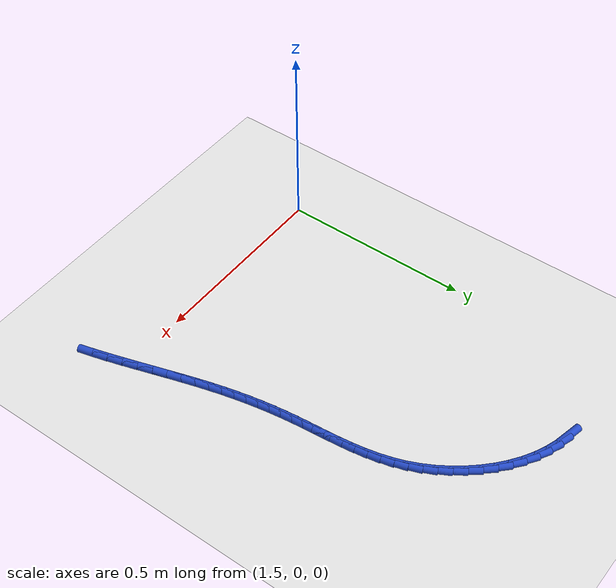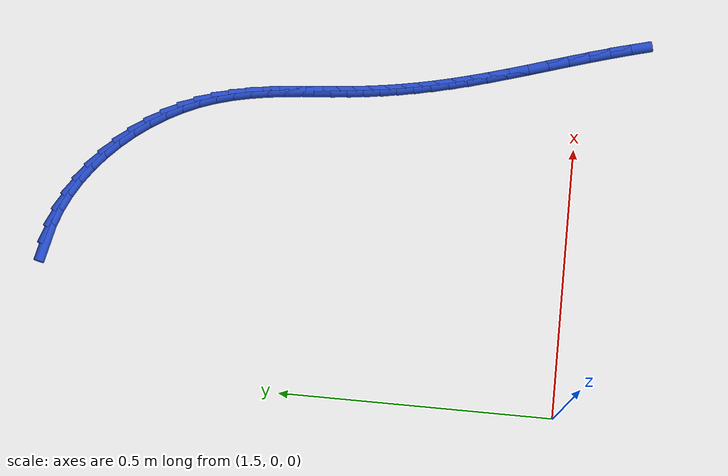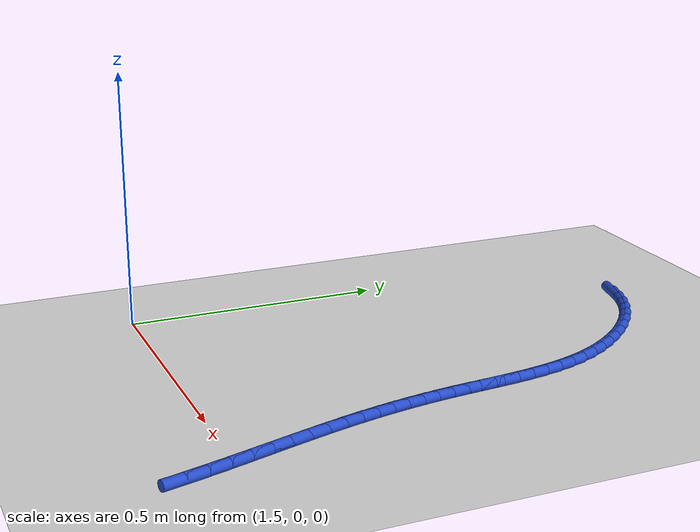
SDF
<sdf version="1.6">
 <world name="default">
  <model name="ground_plane">
   <static>1</static>
   <link name="link">
    <collision name="collision">
     <geometry><plane><normal>0 0 1</normal><size>100 100</size></plane></geometry>
     <surface><friction><ode><mu>100</mu><mu2>50</mu2></ode></friction></surface>
    </collision>
    <visual name="visual">
     <cast_shadows>0</cast_shadows>
     <geometry><plane><normal>0 0 1</normal><size>100 100</size></plane></geometry>
     <material>
      <script><uri>file://media/materials/scripts/gazebo.material</uri><name>Gazebo/WhiteGlow</name></script>
     </material>
    </visual>
   </link>
  </model>
  <model name="line">
   <link name="link_75">
    <pose>1.7390801359786912 0.9519437133059039 0.01 0 1.57 -0.2205212773113578</pose>
    <collision name="collision">
     <geometry><cylinder><radius>0.01</radius><length>0.08</length></cylinder></geometry>
    </collision>
    <visual name="visual">
     <material>
      <script><name>Gazebo/Blue</name><uri>file://media/materials/scripts/gazebo.material</uri></script>
     </material>
     <geometry><cylinder><radius>0.01</radius><length>0.08</length></cylinder></geometry>
    </visual>
   </link>
   <link name="link_76">
    <pose>1.7697646347118712 0.9450652665101434 0.01 0 1.57 -0.3317823296719829</pose>
    <collision name="collision">
     <geometry><cylinder><radius>0.01</radius><length>0.08</length></cylinder></geometry>
    </collision>
    <visual name="visual">
     <material>
      <script><name>Gazebo/Blue</name><uri>file://media/materials/scripts/gazebo.material</uri></script>
     </material>
     <geometry><cylinder><radius>0.01</radius><length>0.08</length></cylinder></geometry>
    </visual>
   </link>
   <link name="link_77">
    <pose>1.7997855909751648 0.9347225209726223 0.01 0 1.57 -0.4344257023588785</pose>
    <collision name="collision">
     <geometry><cylinder><radius>0.01</radius><length>0.08</length></cylinder></geometry>
    </collision>
    <visual name="visual">
     <material>
      <script><name>Gazebo/Blue</name><uri>file://media/materials/scripts/gazebo.material</uri></script>
     </material>
     <geometry><cylinder><radius>0.01</radius><length>0.08</length></cylinder></geometry>
    </visual>
   </link>
   <link name="link_78">
    <pose>1.8289620499832029 0.9211849787125048 0.01 0 1.57 -0.5291714408558121</pose>
    <collision name="collision">
     <geometry><cylinder><radius>0.01</radius><length>0.08</length></cylinder></geometry>
    </collision>
    <visual name="visual">
     <material>
      <script><name>Gazebo/Blue</name><uri>file://media/materials/scripts/gazebo.material</uri></script>
     </material>
     <geometry><cylinder><radius>0.01</radius><length>0.08</length></cylinder></geometry>
    </visual>
   </link>
   <link name="link_79">
    <pose>1.8571130569504533 0.9047221417524219 0.01 0 1.57 -0.6171088332450005</pose>
    <collision name="collision">
     <geometry><cylinder><radius>0.01</radius><length>0.08</length></cylinder></geometry>
    </collision>
    <visual name="visual">
     <material>
      <script><name>Gazebo/Blue</name><uri>file://media/materials/scripts/gazebo.material</uri></script>
     </material>
     <geometry><cylinder><radius>0.01</radius><length>0.08</length></cylinder></geometry>
    </visual>
   </link>
   <link name="link_80">
    <pose>1.884057657091386 0.8856035121150049 0.01 0 1.57 -0.6995043630200591</pose>
    <collision name="collision">
     <geometry><cylinder><radius>0.01</radius><length>0.08</length></cylinder></geometry>
    </collision>
    <visual name="visual">
     <material>
      <script><name>Gazebo/Blue</name><uri>file://media/materials/scripts/gazebo.material</uri></script>
     </material>
     <geometry><cylinder><radius>0.01</radius><length>0.08</length></cylinder></geometry>
    </visual>
   </link>
   <link name="link_81">
    <pose>1.909614895620469 0.8640985918228846 0.01 0 1.57 -0.7776854757467255</pose>
    <collision name="collision">
     <geometry><cylinder><radius>0.01</radius><length>0.08</length></cylinder></geometry>
    </collision>
    <visual name="visual">
     <material>
      <script><name>Gazebo/Blue</name><uri>file://media/materials/scripts/gazebo.material</uri></script>
     </material>
     <geometry><cylinder><radius>0.01</radius><length>0.08</length></cylinder></geometry>
    </visual>
   </link>
   <link name="link_82">
    <pose>1.9336038177521715 0.8404768828986923 0.01 0 1.57 -0.8529839425820859</pose>
    <collision name="collision">
     <geometry><cylinder><radius>0.01</radius><length>0.08</length></cylinder></geometry>
    </collision>
    <visual name="visual">
     <material>
      <script><name>Gazebo/Blue</name><uri>file://media/materials/scripts/gazebo.material</uri></script>
     </material>
     <geometry><cylinder><radius>0.01</radius><length>0.08</length></cylinder></geometry>
    </visual>
   </link>
   <link name="link_83">
    <pose>1.9558434687009618 0.8150078873650584 0.01 0 1.57 -0.9267195190886793</pose>
    <collision name="collision">
     <geometry><cylinder><radius>0.01</radius><length>0.08</length></cylinder></geometry>
    </collision>
    <visual name="visual">
     <material>
      <script><name>Gazebo/Blue</name><uri>file://media/materials/scripts/gazebo.material</uri></script>
     </material>
     <geometry><cylinder><radius>0.01</radius><length>0.08</length></cylinder></geometry>
    </visual>
   </link>
   <link name="link_84">
    <pose>1.9761528936813095 0.7879611072446151 0.01 0 1.57 -1.000208095487081</pose>
    <collision name="collision">
     <geometry><cylinder><radius>0.01</radius><length>0.08</length></cylinder></geometry>
    </collision>
    <visual name="visual">
     <material>
      <script><name>Gazebo/Blue</name><uri>file://media/materials/scripts/gazebo.material</uri></script>
     </material>
     <geometry><cylinder><radius>0.01</radius><length>0.08</length></cylinder></geometry>
    </visual>
   </link>
   <link name="link_85">
    <pose>1.9943511379076835 0.7596060445599923 0.01 0 1.57 -1.0747828481990753</pose>
    <collision name="collision">
     <geometry><cylinder><radius>0.01</radius><length>0.08</length></cylinder></geometry>
    </collision>
    <visual name="visual">
     <material>
      <script><name>Gazebo/Blue</name><uri>file://media/materials/scripts/gazebo.material</uri></script>
     </material>
     <geometry><cylinder><radius>0.01</radius><length>0.08</length></cylinder></geometry>
    </visual>
   </link>
   <link name="link_86">
    <pose>2.010257246594552 0.7302122013338221 0.01 0 1.57 -1.1518187392249741</pose>
    <collision name="collision">
     <geometry><cylinder><radius>0.01</radius><length>0.08</length></cylinder></geometry>
    </collision>
    <visual name="visual">
     <material>
      <script><name>Gazebo/Blue</name><uri>file://media/materials/scripts/gazebo.material</uri></script>
     </material>
     <geometry><cylinder><radius>0.01</radius><length>0.08</length></cylinder></geometry>
    </visual>
   </link>
   <link name="link_87">
    <pose>2.0236903008292 0.7000490692684568 0.01 0 1.57 -1.2298455330077913</pose>
    <collision name="collision">
     <geometry><cylinder><radius>0.01</radius><length>0.08</length></cylinder></geometry>
    </collision>
    <visual name="visual">
     <material>
      <script><name>Gazebo/Blue</name><uri>file://media/materials/scripts/gazebo.material</uri></script>
     </material>
     <geometry><cylinder><radius>0.01</radius><length>0.08</length></cylinder></geometry>
    </visual>
   </link>
   <link name="link_88">
    <pose>2.0345811295196503 0.6693539912492867 0.01 0 1.57 -1.2998049500466524</pose>
    <collision name="collision">
     <geometry><cylinder><radius>0.01</radius><length>0.08</length></cylinder></geometry>
    </collision>
    <visual name="visual">
     <material>
      <script><name>Gazebo/Blue</name><uri>file://media/materials/scripts/gazebo.material</uri></script>
     </material>
     <geometry><cylinder><radius>0.01</radius><length>0.08</length></cylinder></geometry>
    </visual>
   </link>
   <link name="link_89">
    <pose>2.0432195541368796 0.6382610313136557 0.01 0 1.57 -1.3589705079030918</pose>
    <collision name="collision">
     <geometry><cylinder><radius>0.01</radius><length>0.08</length></cylinder></geometry>
    </collision>
    <visual name="visual">
     <material>
      <script><name>Gazebo/Blue</name><uri>file://media/materials/scripts/gazebo.material</uri></script>
     </material>
     <geometry><cylinder><radius>0.01</radius><length>0.08</length></cylinder></geometry>
    </visual>
   </link>
   <link name="link_90">
    <pose>2.0499673416638124 0.6068835554389409 0.01 0 1.57 -1.4068564324336597</pose>
    <collision name="collision">
     <geometry><cylinder><radius>0.01</radius><length>0.08</length></cylinder></geometry>
    </collision>
    <visual name="visual">
     <material>
      <script><name>Gazebo/Blue</name><uri>file://media/materials/scripts/gazebo.material</uri></script>
     </material>
     <geometry><cylinder><radius>0.01</radius><length>0.08</length></cylinder></geometry>
    </visual>
   </link>
   <link name="link_91">
    <pose>2.0551862590833725 0.5753349296025176 0.01 0 1.57 -1.4432957808813394</pose>
    <collision name="collision">
     <geometry><cylinder><radius>0.01</radius><length>0.08</length></cylinder></geometry>
    </collision>
    <visual name="visual">
     <material>
      <script><name>Gazebo/Blue</name><uri>file://media/materials/scripts/gazebo.material</uri></script>
     </material>
     <geometry><cylinder><radius>0.01</radius><length>0.08</length></cylinder></geometry>
    </visual>
   </link>
   <link name="link_92">
    <pose>2.059238073378485 0.543728519781763 0.01 0 1.57 -1.4682604191956454</pose>
    <collision name="collision">
     <geometry><cylinder><radius>0.01</radius><length>0.08</length></cylinder></geometry>
    </collision>
    <visual name="visual">
     <material>
      <script><name>Gazebo/Blue</name><uri>file://media/materials/scripts/gazebo.material</uri></script>
     </material>
     <geometry><cylinder><radius>0.01</radius><length>0.08</length></cylinder></geometry>
    </visual>
   </link>
   <link name="link_93">
    <pose>2.062484551532075 0.5121776919540528 0.01 0 1.57 -1.4817165395546767</pose>
    <collision name="collision">
     <geometry><cylinder><radius>0.01</radius><length>0.08</length></cylinder></geometry>
    </collision>
    <visual name="visual">
     <material>
      <script><name>Gazebo/Blue</name><uri>file://media/materials/scripts/gazebo.material</uri></script>
     </material>
     <geometry><cylinder><radius>0.01</radius><length>0.08</length></cylinder></geometry>
    </visual>
   </link>
   <link name="link_94">
    <pose>2.0652874605270664 0.48079581209676375 0.01 0 1.57 -1.4835219707570435</pose>
    <collision name="collision">
     <geometry><cylinder><radius>0.01</radius><length>0.08</length></cylinder></geometry>
    </collision>
    <visual name="visual">
     <material>
      <script><name>Gazebo/Blue</name><uri>file://media/materials/scripts/gazebo.material</uri></script>
     </material>
     <geometry><cylinder><radius>0.01</radius><length>0.08</length></cylinder></geometry>
    </visual>
   </link>
   <link name="link_95">
    <pose>2.068008567346383 0.4496962461872714 0.01 0 1.57 -1.4733688259489817</pose>
    <collision name="collision">
     <geometry><cylinder><radius>0.01</radius><length>0.08</length></cylinder></geometry>
    </collision>
    <visual name="visual">
     <material>
      <script><name>Gazebo/Blue</name><uri>file://media/materials/scripts/gazebo.material</uri></script>
     </material>
     <geometry><cylinder><radius>0.01</radius><length>0.08</length></cylinder></geometry>
    </visual>
   </link>
   <link name="link_96">
    <pose>2.0710094878865077 0.4189921896361074 0.01 0 1.57 -1.4535699312417452</pose>
    <collision name="collision">
     <geometry><cylinder><radius>0.01</radius><length>0.08</length></cylinder></geometry>
    </collision>
    <visual name="visual">
     <material>
      <script><name>Gazebo/Blue</name><uri>file://media/materials/scripts/gazebo.material</uri></script>
     </material>
     <geometry><cylinder><radius>0.01</radius><length>0.08</length></cylinder></geometry>
    </visual>
   </link>
   <link name="link_97">
    <pose>2.0745756175117434 0.38871078979115625 0.01 0 1.57 -1.4314084883542386</pose>
    <collision name="collision">
     <geometry><cylinder><radius>0.01</radius><length>0.08</length></cylinder></geometry>
    </collision>
    <visual name="visual">
     <material>
      <script><name>Gazebo/Blue</name><uri>file://media/materials/scripts/gazebo.material</uri></script>
     </material>
     <geometry><cylinder><radius>0.01</radius><length>0.08</length></cylinder></geometry>
    </visual>
   </link>
   <link name="link_98">
    <pose>2.078792563534171 0.358653646180805 0.01 0 1.57 -1.408569980438844</pose>
    <collision name="collision">
     <geometry><cylinder><radius>0.01</radius><length>0.08</length></cylinder></geometry>
    </collision>
    <visual name="visual">
     <material>
      <script><name>Gazebo/Blue</name><uri>file://media/materials/scripts/gazebo.material</uri></script>
     </material>
     <geometry><cylinder><radius>0.01</radius><length>0.08</length></cylinder></geometry>
    </visual>
   </link>
   <link name="link_99">
    <pose>2.083713597267178 0.32858585307741933 0.01 0 1.57 -1.3856191985760256</pose>
    <collision name="collision">
     <geometry><cylinder><radius>0.01</radius><length>0.08</length></cylinder></geometry>
    </collision>
    <visual name="visual">
     <material>
      <script><name>Gazebo/Blue</name><uri>file://media/materials/scripts/gazebo.material</uri></script>
     </material>
     <geometry><cylinder><radius>0.01</radius><length>0.08</length></cylinder></geometry>
    </visual>
   </link>
   <link name="link_100">
    <pose>2.08939199002415 0.2982725047533635 0.01 0 1.57 -1.3631099295155278</pose>
    <collision name="collision">
     <geometry><cylinder><radius>0.01</radius><length>0.08</length></cylinder></geometry>
    </collision>
    <visual name="visual">
     <material>
      <script><name>Gazebo/Blue</name><uri>file://media/materials/scripts/gazebo.material</uri></script>
     </material>
     <geometry><cylinder><radius>0.01</radius><length>0.08</length></cylinder></geometry>
    </visual>
   </link>
   <link name="link_101">
    <pose>2.0958810131184777 0.26747869548100356 0.01 0 1.57 -1.3415408060444778</pose>
    <collision name="collision">
     <geometry><cylinder><radius>0.01</radius><length>0.08</length></cylinder></geometry>
    </collision>
    <visual name="visual">
     <material>
      <script><name>Gazebo/Blue</name><uri>file://media/materials/scripts/gazebo.material</uri></script>
     </material>
     <geometry><cylinder><radius>0.01</radius><length>0.08</length></cylinder></geometry>
    </visual>
   </link>
   <link name="link_102">
    <pose>2.1032339378635454 0.23596951953270384 0.01 0 1.57 -1.321321625853663</pose>
    <collision name="collision">
     <geometry><cylinder><radius>0.01</radius><length>0.08</length></cylinder></geometry>
    </collision>
    <visual name="visual">
     <material>
      <script><name>Gazebo/Blue</name><uri>file://media/materials/scripts/gazebo.material</uri></script>
     </material>
     <geometry><cylinder><radius>0.01</radius><length>0.08</length></cylinder></geometry>
    </visual>
   </link>
   <link name="link_103">
    <pose>2.111504035572742 0.20351007118083014 0.01 0 1.57 -1.302755090681027</pose>
    <collision name="collision">
     <geometry><cylinder><radius>0.01</radius><length>0.08</length></cylinder></geometry>
    </collision>
    <visual name="visual">
     <material>
      <script><name>Gazebo/Blue</name><uri>file://media/materials/scripts/gazebo.material</uri></script>
     </material>
     <geometry><cylinder><radius>0.01</radius><length>0.08</length></cylinder></geometry>
    </visual>
   </link>
   <link name="link_104">
    <pose>2.120744527624089 0.16986552031682525 0.01 0 1.57 -1.2870370394047246</pose>
    <collision name="collision">
     <geometry><cylinder><radius>0.01</radius><length>0.08</length></cylinder></geometry>
    </collision>
    <visual name="visual">
     <material>
      <script><name>Gazebo/Blue</name><uri>file://media/materials/scripts/gazebo.material</uri></script>
     </material>
     <geometry><cylinder><radius>0.01</radius><length>0.08</length></cylinder></geometry>
    </visual>
   </link>
   <link name="link_105">
    <pose>2.1309400585017158 0.13490488550534788 0.01 0 1.57 -1.2767669157736463</pose>
    <collision name="collision">
     <geometry><cylinder><radius>0.01</radius><length>0.08</length></cylinder></geometry>
    </collision>
    <visual name="visual">
     <material>
      <script><name>Gazebo/Blue</name><uri>file://media/materials/scripts/gazebo.material</uri></script>
     </material>
     <geometry><cylinder><radius>0.01</radius><length>0.08</length></cylinder></geometry>
    </visual>
   </link>
   <link name="link_106">
    <pose>2.1418707614286516 0.09880688471442109 0.01 0 1.57 -1.2717125280725057</pose>
    <collision name="collision">
     <geometry><cylinder><radius>0.01</radius><length>0.08</length></cylinder></geometry>
    </collision>
    <visual name="visual">
     <material>
      <script><name>Gazebo/Blue</name><uri>file://media/materials/scripts/gazebo.material</uri></script>
     </material>
     <geometry><cylinder><radius>0.01</radius><length>0.08</length></cylinder></geometry>
    </visual>
   </link>
   <link name="link_107">
    <pose>2.1532788146665616 0.06180771259489985 0.01 0 1.57 -1.2713611393586757</pose>
    <collision name="collision">
     <geometry><cylinder><radius>0.01</radius><length>0.08</length></cylinder></geometry>
    </collision>
    <visual name="visual">
     <material>
      <script><name>Gazebo/Blue</name><uri>file://media/materials/scripts/gazebo.material</uri></script>
     </material>
     <geometry><cylinder><radius>0.01</radius><length>0.08</length></cylinder></geometry>
    </visual>
   </link>
   <link name="link_108">
    <pose>2.164906396477109 0.02414356379763686 0.01 0 1.57 -1.2754566917188483</pose>
    <collision name="collision">
     <geometry><cylinder><radius>0.01</radius><length>0.08</length></cylinder></geometry>
    </collision>
    <visual name="visual">
     <material>
      <script><name>Gazebo/Blue</name><uri>file://media/materials/scripts/gazebo.material</uri></script>
     </material>
     <geometry><cylinder><radius>0.01</radius><length>0.08</length></cylinder></geometry>
    </visual>
   </link>
   <link name="link_109">
    <pose>2.1764956851219592 -0.013949367026513091 0.01 0 1.57 -1.2839583065396747</pose>
    <collision name="collision">
     <geometry><cylinder><radius>0.01</radius><length>0.08</length></cylinder></geometry>
    </collision>
    <visual name="visual">
     <material>
      <script><name>Gazebo/Blue</name><uri>file://media/materials/scripts/gazebo.material</uri></script>
     </material>
     <geometry><cylinder><radius>0.01</radius><length>0.08</length></cylinder></geometry>
    </visual>
   </link>
   <link name="link_110">
    <pose>2.1877888588627767 -0.05223488522669708 0.01 0 1.57 -1.2970239176390905</pose>
    <collision name="collision">
     <geometry><cylinder><radius>0.01</radius><length>0.08</length></cylinder></geometry>
    </collision>
    <visual name="visual">
     <material>
      <script><name>Gazebo/Blue</name><uri>file://media/materials/scripts/gazebo.material</uri></script>
     </material>
     <geometry><cylinder><radius>0.01</radius><length>0.08</length></cylinder></geometry>
    </visual>
   </link>
   <link name="link_111">
    <pose>2.1985280959612243 -0.09047679615206039 0.01 0 1.57 -1.3150142144913384</pose>
    <collision name="collision">
     <geometry><cylinder><radius>0.01</radius><length>0.08</length></cylinder></geometry>
    </collision>
    <visual name="visual">
     <material>
      <script><name>Gazebo/Blue</name><uri>file://media/materials/scripts/gazebo.material</uri></script>
     </material>
     <geometry><cylinder><radius>0.01</radius><length>0.08</length></cylinder></geometry>
    </visual>
   </link>
  </model>
 </world>
</sdf>
